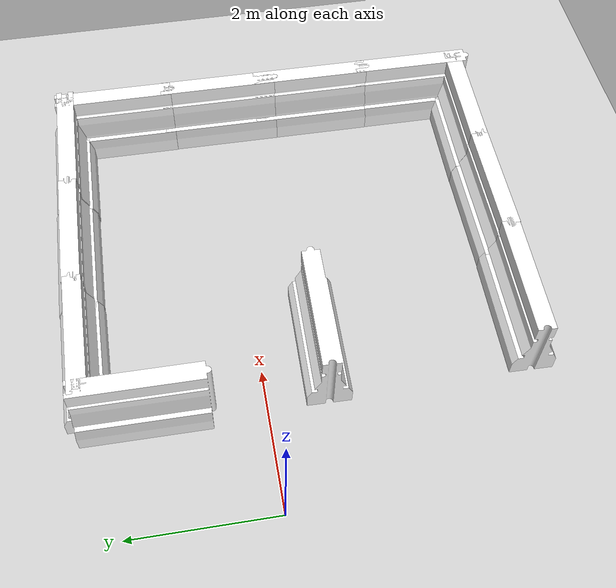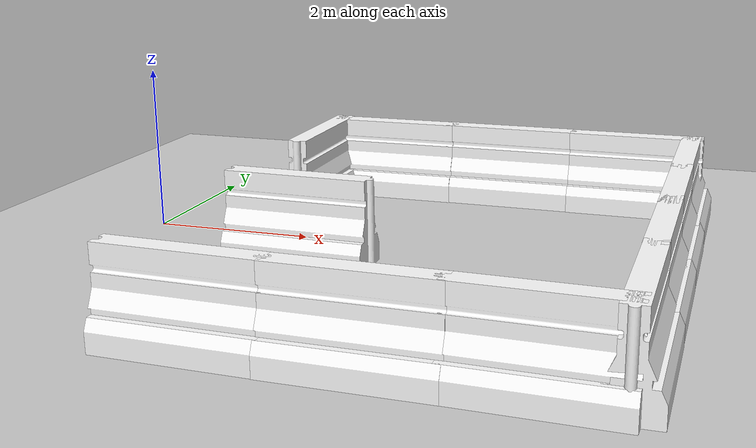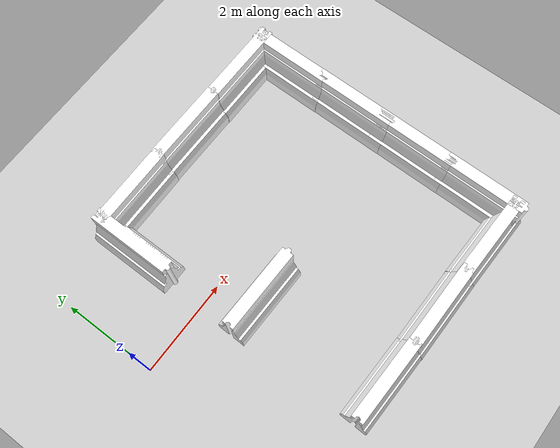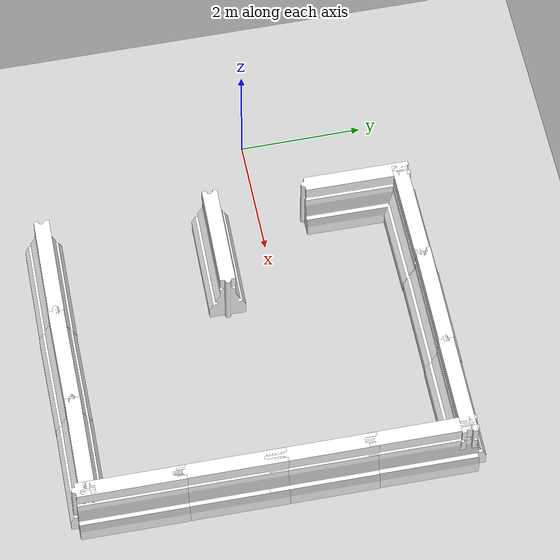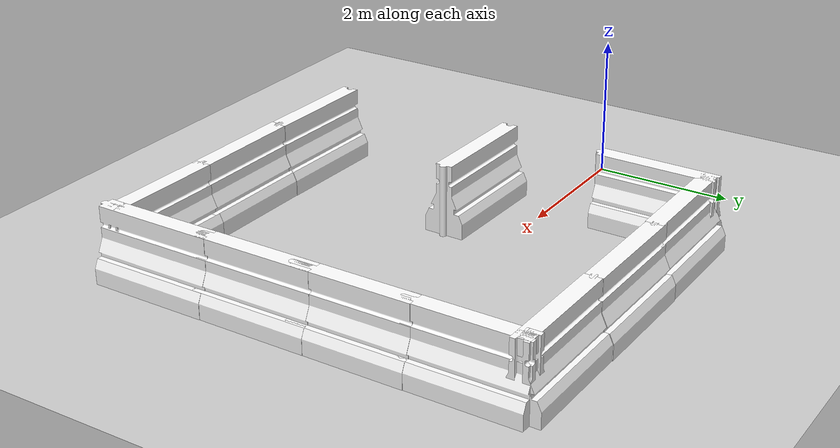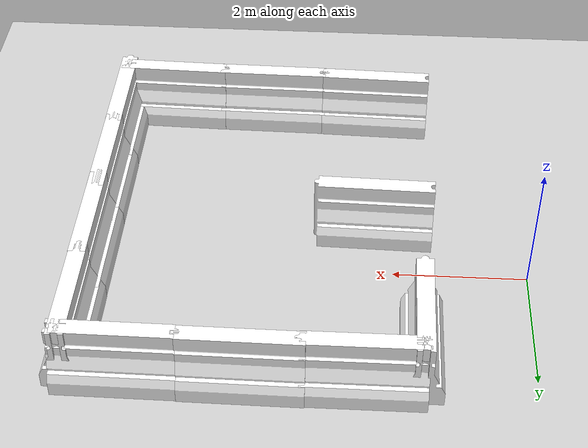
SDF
<sdf version="1.4">
 <world name="default">
  <model name="ground_plane">
   <static>1</static>
   <link name="link">
    <collision name="collision">
     <geometry><plane><normal>0 0 1</normal><size>100 100</size></plane></geometry>
     <surface><friction><ode><mu>100</mu><mu2>50</mu2></ode></friction></surface>
    </collision>
    <visual name="visual">
     <cast_shadows>0</cast_shadows>
     <geometry><plane><normal>0 0 1</normal><size>100 100</size></plane></geometry>
     <material>
      <script><uri>file://media/materials/scripts/gazebo.material</uri><name>Gazebo/Grey</name></script>
     </material>
    </visual>
    <velocity_decay><linear>0</linear><angular>0</angular></velocity_decay>
   </link>
  </model>
  <model name="drc_practice_white_jersey_barrier_1">
   <static>1</static>
   <link name="link">
    <visual name="visual">
     <geometry>
      <mesh><uri>model://drc_practice_white_jersey_barrier/meshes/jersey_barrier.dae</uri></mesh>
     </geometry>
    </visual>
    <collision name="collision">
     <geometry>
      <mesh><uri>model://drc_practice_white_jersey_barrier/meshes/jersey_barrier.dae</uri></mesh>
     </geometry>
    </collision>
    <velocity_decay><linear>0</linear><angular>0</angular></velocity_decay>
   </link>
   <pose>2.39268 2.31372 0 0 -0 1.58049</pose>
  </model>
  <model name="drc_practice_white_jersey_barrier_8">
   <static>1</static>
   <link name="link">
    <visual name="visual">
     <geometry>
      <mesh><uri>model://drc_practice_white_jersey_barrier/meshes/jersey_barrier.dae</uri></mesh>
     </geometry>
    </visual>
    <collision name="collision">
     <geometry>
      <mesh><uri>model://drc_practice_white_jersey_barrier/meshes/jersey_barrier.dae</uri></mesh>
     </geometry>
    </collision>
    <velocity_decay><linear>0</linear><angular>0</angular></velocity_decay>
   </link>
   <pose>2.28233 -0.831319 0 0 -0 1.55441</pose>
  </model>
  <model name="drc_practice_white_jersey_barrier_9">
   <static>1</static>
   <link name="link">
    <visual name="visual">
     <geometry>
      <mesh><uri>model://drc_practice_white_jersey_barrier/meshes/jersey_barrier.dae</uri></mesh>
     </geometry>
    </visual>
    <collision name="collision">
     <geometry>
      <mesh><uri>model://drc_practice_white_jersey_barrier/meshes/jersey_barrier.dae</uri></mesh>
     </geometry>
    </collision>
    <velocity_decay><linear>0</linear><angular>0</angular></velocity_decay>
   </link>
   <pose>6.46697 -3.01776 0 0 -0 0</pose>
  </model>
  <model name="drc_practice_white_jersey_barrier_10">
   <static>1</static>
   <link name="link">
    <visual name="visual">
     <geometry>
      <mesh><uri>model://drc_practice_white_jersey_barrier/meshes/jersey_barrier.dae</uri></mesh>
     </geometry>
    </visual>
    <collision name="collision">
     <geometry>
      <mesh><uri>model://drc_practice_white_jersey_barrier/meshes/jersey_barrier.dae</uri></mesh>
     </geometry>
    </collision>
    <velocity_decay><linear>0</linear><angular>0</angular></velocity_decay>
   </link>
   <pose>2.32962 -3.60661 0 0 -0 1.54842</pose>
  </model>
  <model name="drc_practice_white_jersey_barrier_11">
   <static>1</static>
   <link name="link">
    <visual name="visual">
     <geometry>
      <mesh><uri>model://drc_practice_white_jersey_barrier/meshes/jersey_barrier.dae</uri></mesh>
     </geometry>
    </visual>
    <collision name="collision">
     <geometry>
      <mesh><uri>model://drc_practice_white_jersey_barrier/meshes/jersey_barrier.dae</uri></mesh>
     </geometry>
    </collision>
    <velocity_decay><linear>0</linear><angular>0</angular></velocity_decay>
   </link>
   <pose>4.03056 -3.64741 0 0 0 -1.57947</pose>
  </model>
  <model name="drc_practice_white_jersey_barrier_13">
   <static>1</static>
   <link name="link">
    <visual name="visual">
     <geometry>
      <mesh><uri>model://drc_practice_white_jersey_barrier/meshes/jersey_barrier.dae</uri></mesh>
     </geometry>
    </visual>
    <collision name="collision">
     <geometry>
      <mesh><uri>model://drc_practice_white_jersey_barrier/meshes/jersey_barrier.dae</uri></mesh>
     </geometry>
    </collision>
    <velocity_decay><linear>0</linear><angular>0</angular></velocity_decay>
   </link>
   <pose>5.77143 2.30664 0 0 0 -1.5704</pose>
  </model>
  <model name="drc_practice_white_jersey_barrier_14">
   <static>1</static>
   <link name="link">
    <visual name="visual">
     <geometry>
      <mesh><uri>model://drc_practice_white_jersey_barrier/meshes/jersey_barrier.dae</uri></mesh>
     </geometry>
    </visual>
    <collision name="collision">
     <geometry>
      <mesh><uri>model://drc_practice_white_jersey_barrier/meshes/jersey_barrier.dae</uri></mesh>
     </geometry>
    </collision>
    <velocity_decay><linear>0</linear><angular>0</angular></velocity_decay>
   </link>
   <pose>4.04159 2.32459 0 0 -0 1.57033</pose>
  </model>
  <model name="drc_practice_white_jersey_barrier_15">
   <static>1</static>
   <link name="link">
    <visual name="visual">
     <geometry>
      <mesh><uri>model://drc_practice_white_jersey_barrier/meshes/jersey_barrier.dae</uri></mesh>
     </geometry>
    </visual>
    <collision name="collision">
     <geometry>
      <mesh><uri>model://drc_practice_white_jersey_barrier/meshes/jersey_barrier.dae</uri></mesh>
     </geometry>
    </collision>
    <velocity_decay><linear>0</linear><angular>0</angular></velocity_decay>
   </link>
   <pose>5.69179 -3.67938 0 0 0 -1.59375</pose>
  </model>
  <model name="drc_practice_white_jersey_barrier_16">
   <static>1</static>
   <link name="link">
    <visual name="visual">
     <geometry>
      <mesh><uri>model://drc_practice_white_jersey_barrier/meshes/jersey_barrier.dae</uri></mesh>
     </geometry>
    </visual>
    <collision name="collision">
     <geometry>
      <mesh><uri>model://drc_practice_white_jersey_barrier/meshes/jersey_barrier.dae</uri></mesh>
     </geometry>
    </collision>
    <velocity_decay><linear>0</linear><angular>0</angular></velocity_decay>
   </link>
   <pose>6.47042 -1.43098 0 0 -0 0</pose>
  </model>
  <model name="drc_practice_white_jersey_barrier_17">
   <static>1</static>
   <link name="link">
    <visual name="visual">
     <geometry>
      <mesh><uri>model://drc_practice_white_jersey_barrier/meshes/jersey_barrier.dae</uri></mesh>
     </geometry>
    </visual>
    <collision name="collision">
     <geometry>
      <mesh><uri>model://drc_practice_white_jersey_barrier/meshes/jersey_barrier.dae</uri></mesh>
     </geometry>
    </collision>
    <velocity_decay><linear>0</linear><angular>0</angular></velocity_decay>
   </link>
   <pose>6.4749 0 0 0 -0 0</pose>
  </model>
  <model name="drc_practice_white_jersey_barrier_18">
   <static>1</static>
   <link name="link">
    <visual name="visual">
     <geometry>
      <mesh><uri>model://drc_practice_white_jersey_barrier/meshes/jersey_barrier.dae</uri></mesh>
     </geometry>
    </visual>
    <collision name="collision">
     <geometry>
      <mesh><uri>model://drc_practice_white_jersey_barrier/meshes/jersey_barrier.dae</uri></mesh>
     </geometry>
    </collision>
    <velocity_decay><linear>0</linear><angular>0</angular></velocity_decay>
   </link>
   <pose>1.59512 1.59557 0 0 -0 0</pose>
  </model>
  <model name="drc_practice_white_jersey_barrier_19">
   <static>1</static>
   <link name="link">
    <visual name="visual">
     <geometry>
      <mesh><uri>model://drc_practice_white_jersey_barrier/meshes/jersey_barrier.dae</uri></mesh>
     </geometry>
    </visual>
    <collision name="collision">
     <geometry>
      <mesh><uri>model://drc_practice_white_jersey_barrier/meshes/jersey_barrier.dae</uri></mesh>
     </geometry>
    </collision>
    <velocity_decay><linear>0</linear><angular>0</angular></velocity_decay>
   </link>
   <pose>6.4764 1.58795 0 0 -0 0</pose>
  </model>
 </world>
</sdf>
